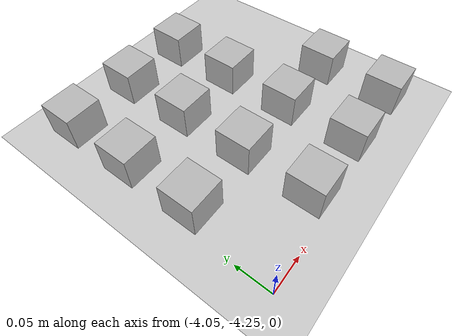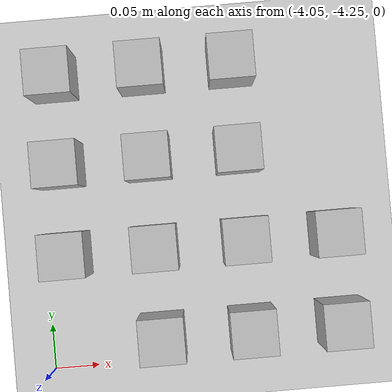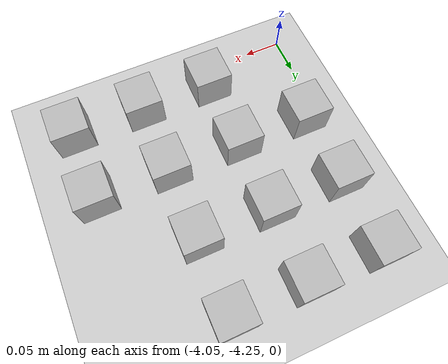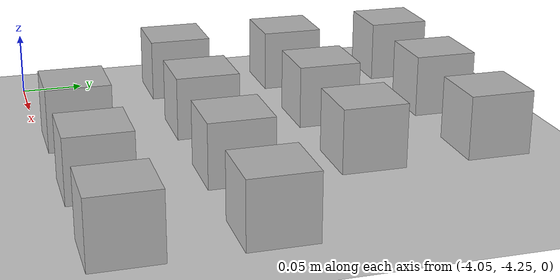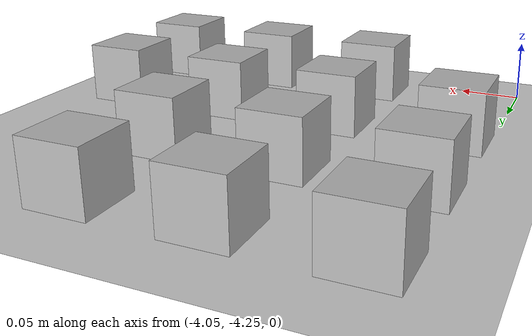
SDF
<sdf version="1.6">
 <world name="default">
  <model name="ground_plane">
   <static>1</static>
   <link name="link">
    <collision name="collision">
     <geometry><plane><normal>0 0 1</normal><size>100 100</size></plane></geometry>
     <surface><friction><ode><mu>100</mu><mu2>50</mu2></ode></friction></surface>
    </collision>
    <visual name="visual">
     <cast_shadows>0</cast_shadows>
     <geometry><plane><normal>0 0 1</normal><size>100 100</size></plane></geometry>
     <material>
      <script><uri>file://media/materials/scripts/gazebo.material</uri><name>Gazebo/Grey</name></script>
     </material>
    </visual>
    <velocity_decay><linear>0</linear><angular>0</angular></velocity_decay>
   </link>
  </model>
  <model name="at65">
   <static>0</static>
   <link name="link">
    <inertial>
     <mass>0.01</mass>
     <inertia><ixx>4e-05</ixx><ixy>0</ixy><ixz>0</ixz><iyy>4e-05</iyy><iyz>0</iyz><izz>4e-05</izz></inertia>
    </inertial>
    <visual name="visual">
     <transparency>0.1</transparency>
     <geometry><box><size>0.05 0.05 0.05</size></box></geometry>
     <material>
      <script>
       <uri>model://at0/materials/scripts</uri>
       <uri>model://at0/materials/textures</uri>
       <name>at0/Diffuse</name>
      </script>
     </material>
    </visual>
    <collision name="collision">
     <geometry><box><size>0.05 0.05 0.05</size></box></geometry>
     <surface><friction><ode><mu>0.8</mu><mu2>0.7</mu2></ode></friction></surface>
    </collision>
    <velocity_decay><linear>0</linear><angular>0</angular></velocity_decay>
   </link>
   <pose>-3.92367 -4.22003 0.024997 2.9e-05 2.9e-05 4e-06</pose>
  </model>
  <model name="at66">
   <static>0</static>
   <link name="link">
    <inertial>
     <mass>0.01</mass>
     <inertia><ixx>4e-05</ixx><ixy>0</ixy><ixz>0</ixz><iyy>4e-05</iyy><iyz>0</iyz><izz>4e-05</izz></inertia>
    </inertial>
    <visual name="visual">
     <transparency>0.1</transparency>
     <geometry><box><size>0.05 0.05 0.05</size></box></geometry>
     <material>
      <script>
       <uri>model://at0/materials/scripts</uri>
       <uri>model://at0/materials/textures</uri>
       <name>at0/Diffuse</name>
      </script>
     </material>
    </visual>
    <collision name="collision">
     <geometry><box><size>0.05 0.05 0.05</size></box></geometry>
     <surface><friction><ode><mu>0.8</mu><mu2>0.7</mu2></ode></friction></surface>
    </collision>
    <velocity_decay><linear>0</linear><angular>0</angular></velocity_decay>
   </link>
   <pose>-3.82367 -4.22003 0.024997 2.9e-05 2.9e-05 4e-06</pose>
  </model>
  <model name="at67">
   <static>0</static>
   <link name="link">
    <inertial>
     <mass>0.01</mass>
     <inertia><ixx>4e-05</ixx><ixy>0</ixy><ixz>0</ixz><iyy>4e-05</iyy><iyz>0</iyz><izz>4e-05</izz></inertia>
    </inertial>
    <visual name="visual">
     <transparency>0.1</transparency>
     <geometry><box><size>0.05 0.05 0.05</size></box></geometry>
     <material>
      <script>
       <uri>model://at0/materials/scripts</uri>
       <uri>model://at0/materials/textures</uri>
       <name>at0/Diffuse</name>
      </script>
     </material>
    </visual>
    <collision name="collision">
     <geometry><box><size>0.05 0.05 0.05</size></box></geometry>
     <surface><friction><ode><mu>0.8</mu><mu2>0.7</mu2></ode></friction></surface>
    </collision>
    <velocity_decay><linear>0</linear><angular>0</angular></velocity_decay>
   </link>
   <pose>-3.72367 -4.22003 0.024993 -2.9e-05 -2.9e-05 4e-06</pose>
  </model>
  <model name="at68">
   <static>0</static>
   <link name="link">
    <inertial>
     <mass>0.01</mass>
     <inertia><ixx>4e-05</ixx><ixy>0</ixy><ixz>0</ixz><iyy>4e-05</iyy><iyz>0</iyz><izz>4e-05</izz></inertia>
    </inertial>
    <visual name="visual">
     <transparency>0.1</transparency>
     <geometry><box><size>0.05 0.05 0.05</size></box></geometry>
     <material>
      <script>
       <uri>model://at0/materials/scripts</uri>
       <uri>model://at0/materials/textures</uri>
       <name>at0/Diffuse</name>
      </script>
     </material>
    </visual>
    <collision name="collision">
     <geometry><box><size>0.05 0.05 0.05</size></box></geometry>
     <surface><friction><ode><mu>0.8</mu><mu2>0.7</mu2></ode></friction></surface>
    </collision>
    <velocity_decay><linear>0</linear><angular>0</angular></velocity_decay>
   </link>
   <pose>-4.02367 -4.12003 0.024997 2.9e-05 2.9e-05 4e-06</pose>
  </model>
  <model name="at69">
   <static>0</static>
   <link name="link">
    <inertial>
     <mass>0.01</mass>
     <inertia><ixx>4e-05</ixx><ixy>0</ixy><ixz>0</ixz><iyy>4e-05</iyy><iyz>0</iyz><izz>4e-05</izz></inertia>
    </inertial>
    <visual name="visual">
     <transparency>0.1</transparency>
     <geometry><box><size>0.05 0.05 0.05</size></box></geometry>
     <material>
      <script>
       <uri>model://at0/materials/scripts</uri>
       <uri>model://at0/materials/textures</uri>
       <name>at0/Diffuse</name>
      </script>
     </material>
    </visual>
    <collision name="collision">
     <geometry><box><size>0.05 0.05 0.05</size></box></geometry>
     <surface><friction><ode><mu>0.8</mu><mu2>0.7</mu2></ode></friction></surface>
    </collision>
    <velocity_decay><linear>0</linear><angular>0</angular></velocity_decay>
   </link>
   <pose>-3.92367 -4.12003 0.024997 2.9e-05 2.9e-05 4e-06</pose>
  </model>
  <model name="at70">
   <static>0</static>
   <link name="link">
    <inertial>
     <mass>0.01</mass>
     <inertia><ixx>4e-05</ixx><ixy>0</ixy><ixz>0</ixz><iyy>4e-05</iyy><iyz>0</iyz><izz>4e-05</izz></inertia>
    </inertial>
    <visual name="visual">
     <transparency>0.1</transparency>
     <geometry><box><size>0.05 0.05 0.05</size></box></geometry>
     <material>
      <script>
       <uri>model://at0/materials/scripts</uri>
       <uri>model://at0/materials/textures</uri>
       <name>at0/Diffuse</name>
      </script>
     </material>
    </visual>
    <collision name="collision">
     <geometry><box><size>0.05 0.05 0.05</size></box></geometry>
     <surface><friction><ode><mu>0.8</mu><mu2>0.7</mu2></ode></friction></surface>
    </collision>
    <velocity_decay><linear>0</linear><angular>0</angular></velocity_decay>
   </link>
   <pose>-3.82367 -4.12003 0.024993 -2.9e-05 -2.9e-05 4e-06</pose>
  </model>
  <model name="at71">
   <static>0</static>
   <link name="link">
    <inertial>
     <mass>0.01</mass>
     <inertia><ixx>4e-05</ixx><ixy>0</ixy><ixz>0</ixz><iyy>4e-05</iyy><iyz>0</iyz><izz>4e-05</izz></inertia>
    </inertial>
    <visual name="visual">
     <transparency>0.1</transparency>
     <geometry><box><size>0.05 0.05 0.05</size></box></geometry>
     <material>
      <script>
       <uri>model://at0/materials/scripts</uri>
       <uri>model://at0/materials/textures</uri>
       <name>at0/Diffuse</name>
      </script>
     </material>
    </visual>
    <collision name="collision">
     <geometry><box><size>0.05 0.05 0.05</size></box></geometry>
     <surface><friction><ode><mu>0.8</mu><mu2>0.7</mu2></ode></friction></surface>
    </collision>
    <velocity_decay><linear>0</linear><angular>0</angular></velocity_decay>
   </link>
   <pose>-3.72367 -4.12003 0.024997 2.9e-05 2.9e-05 4e-06</pose>
  </model>
  <model name="at72">
   <static>0</static>
   <link name="link">
    <inertial>
     <mass>0.01</mass>
     <inertia><ixx>4e-05</ixx><ixy>0</ixy><ixz>0</ixz><iyy>4e-05</iyy><iyz>0</iyz><izz>4e-05</izz></inertia>
    </inertial>
    <visual name="visual">
     <transparency>0.1</transparency>
     <geometry><box><size>0.05 0.05 0.05</size></box></geometry>
     <material>
      <script>
       <uri>model://at0/materials/scripts</uri>
       <uri>model://at0/materials/textures</uri>
       <name>at0/Diffuse</name>
      </script>
     </material>
    </visual>
    <collision name="collision">
     <geometry><box><size>0.05 0.05 0.05</size></box></geometry>
     <surface><friction><ode><mu>0.8</mu><mu2>0.7</mu2></ode></friction></surface>
    </collision>
    <velocity_decay><linear>0</linear><angular>0</angular></velocity_decay>
   </link>
   <pose>-4.02367 -4.02003 0.024993 -2.9e-05 -2.9e-05 4e-06</pose>
  </model>
  <model name="at73">
   <static>0</static>
   <link name="link">
    <inertial>
     <mass>0.01</mass>
     <inertia><ixx>4e-05</ixx><ixy>0</ixy><ixz>0</ixz><iyy>4e-05</iyy><iyz>0</iyz><izz>4e-05</izz></inertia>
    </inertial>
    <visual name="visual">
     <transparency>0.1</transparency>
     <geometry><box><size>0.05 0.05 0.05</size></box></geometry>
     <material>
      <script>
       <uri>model://at0/materials/scripts</uri>
       <uri>model://at0/materials/textures</uri>
       <name>at0/Diffuse</name>
      </script>
     </material>
    </visual>
    <collision name="collision">
     <geometry><box><size>0.05 0.05 0.05</size></box></geometry>
     <surface><friction><ode><mu>0.8</mu><mu2>0.7</mu2></ode></friction></surface>
    </collision>
    <velocity_decay><linear>0</linear><angular>0</angular></velocity_decay>
   </link>
   <pose>-3.92367 -4.02003 0.024993 -2.9e-05 -2.9e-05 4e-06</pose>
  </model>
  <model name="at74">
   <static>0</static>
   <link name="link">
    <inertial>
     <mass>0.01</mass>
     <inertia><ixx>4e-05</ixx><ixy>0</ixy><ixz>0</ixz><iyy>4e-05</iyy><iyz>0</iyz><izz>4e-05</izz></inertia>
    </inertial>
    <visual name="visual">
     <transparency>0.1</transparency>
     <geometry><box><size>0.05 0.05 0.05</size></box></geometry>
     <material>
      <script>
       <uri>model://at0/materials/scripts</uri>
       <uri>model://at0/materials/textures</uri>
       <name>at0/Diffuse</name>
      </script>
     </material>
    </visual>
    <collision name="collision">
     <geometry><box><size>0.05 0.05 0.05</size></box></geometry>
     <surface><friction><ode><mu>0.8</mu><mu2>0.7</mu2></ode></friction></surface>
    </collision>
    <velocity_decay><linear>0</linear><angular>0</angular></velocity_decay>
   </link>
   <pose>-3.82367 -4.02003 0.024993 -2.9e-05 -2.9e-05 4e-06</pose>
  </model>
  <model name="at76">
   <static>0</static>
   <link name="link">
    <inertial>
     <mass>0.01</mass>
     <inertia><ixx>4e-05</ixx><ixy>0</ixy><ixz>0</ixz><iyy>4e-05</iyy><iyz>0</iyz><izz>4e-05</izz></inertia>
    </inertial>
    <visual name="visual">
     <transparency>0.1</transparency>
     <geometry><box><size>0.05 0.05 0.05</size></box></geometry>
     <material>
      <script>
       <uri>model://at0/materials/scripts</uri>
       <uri>model://at0/materials/textures</uri>
       <name>at0/Diffuse</name>
      </script>
     </material>
    </visual>
    <collision name="collision">
     <geometry><box><size>0.05 0.05 0.05</size></box></geometry>
     <surface><friction><ode><mu>0.8</mu><mu2>0.7</mu2></ode></friction></surface>
    </collision>
    <velocity_decay><linear>0</linear><angular>0</angular></velocity_decay>
   </link>
   <pose>-4.02367 -3.92003 0.024993 -2.9e-05 -2.9e-05 3e-06</pose>
  </model>
  <model name="at77">
   <static>0</static>
   <link name="link">
    <inertial>
     <mass>0.01</mass>
     <inertia><ixx>4e-05</ixx><ixy>0</ixy><ixz>0</ixz><iyy>4e-05</iyy><iyz>0</iyz><izz>4e-05</izz></inertia>
    </inertial>
    <visual name="visual">
     <transparency>0.1</transparency>
     <geometry><box><size>0.05 0.05 0.05</size></box></geometry>
     <material>
      <script>
       <uri>model://at0/materials/scripts</uri>
       <uri>model://at0/materials/textures</uri>
       <name>at0/Diffuse</name>
      </script>
     </material>
    </visual>
    <collision name="collision">
     <geometry><box><size>0.05 0.05 0.05</size></box></geometry>
     <surface><friction><ode><mu>0.8</mu><mu2>0.7</mu2></ode></friction></surface>
    </collision>
    <velocity_decay><linear>0</linear><angular>0</angular></velocity_decay>
   </link>
   <pose>-3.92367 -3.92003 0.024997 2.9e-05 2.9e-05 3e-06</pose>
  </model>
  <model name="at78">
   <static>0</static>
   <link name="link">
    <inertial>
     <mass>0.01</mass>
     <inertia><ixx>4e-05</ixx><ixy>0</ixy><ixz>0</ixz><iyy>4e-05</iyy><iyz>0</iyz><izz>4e-05</izz></inertia>
    </inertial>
    <visual name="visual">
     <transparency>0.1</transparency>
     <geometry><box><size>0.05 0.05 0.05</size></box></geometry>
     <material>
      <script>
       <uri>model://at0/materials/scripts</uri>
       <uri>model://at0/materials/textures</uri>
       <name>at0/Diffuse</name>
      </script>
     </material>
    </visual>
    <collision name="collision">
     <geometry><box><size>0.05 0.05 0.05</size></box></geometry>
     <surface><friction><ode><mu>0.8</mu><mu2>0.7</mu2></ode></friction></surface>
    </collision>
    <velocity_decay><linear>0</linear><angular>0</angular></velocity_decay>
   </link>
   <pose>-3.82367 -3.92003 0.024993 -2.9e-05 -2.9e-05 3e-06</pose>
  </model>
 </world>
</sdf>
